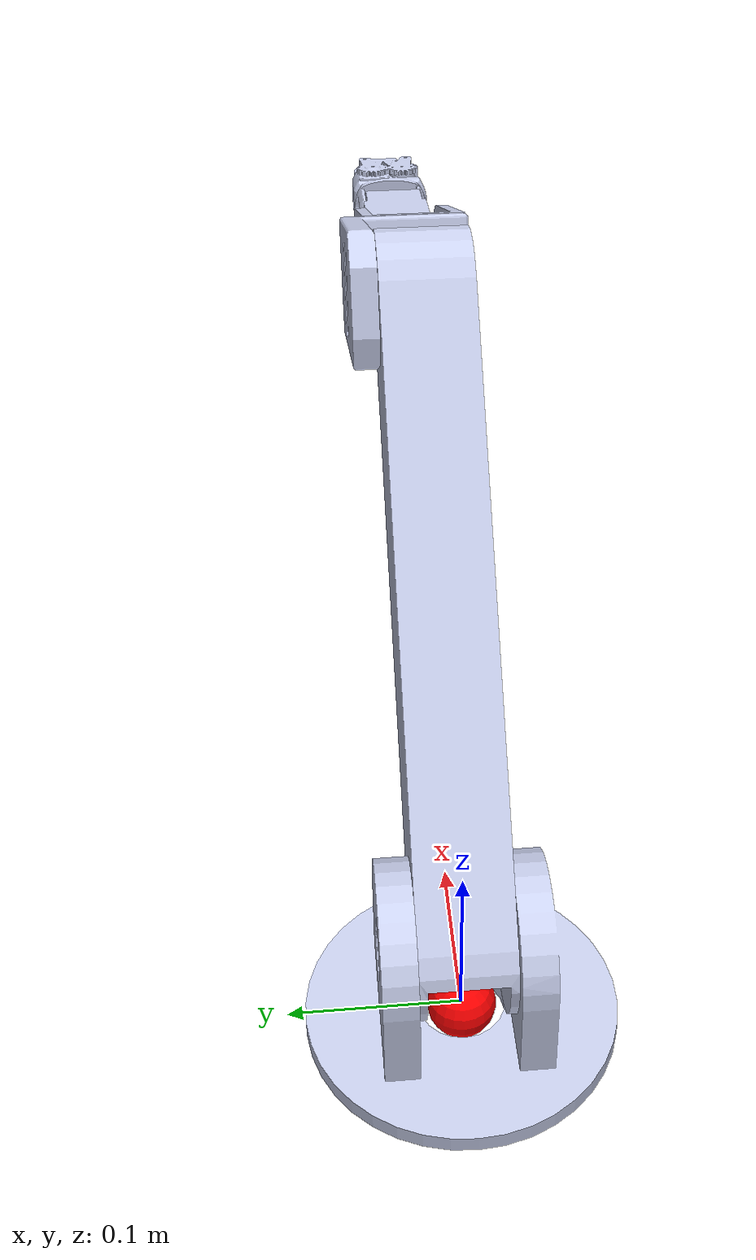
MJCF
<mujoco model="arm2.SLDASM">
  <compiler angle="radian"/>
  <default>
    <geom contype="1" conaffinity="1"/>
  </default>

  <asset>
    <mesh name="base_link" content_type="model/stl" file="base_link.stl"/>
    <mesh name="arm_link1" content_type="model/stl" file="arm_link1.stl"/>
    <mesh name="arm_link2" content_type="model/stl" file="arm_link2.stl"/>
    <mesh name="wrist1" content_type="model/stl" file="wrist1.stl"/>
    <mesh name="hand_link" content_type="model/stl" file="hand_link.stl"/>
    <mesh name="finger_link" content_type="model/stl" file="finger_link.stl"/>
  </asset>

  <worldbody>
    <body name="base_link">
      <inertial pos="2.139e-05 0.0017648 0.02168" quat="0.482209 0.518141 -0.516972 0.481398" mass="0.53613" diaginertia="0.00172612 0.0015219 0.00135018"/>
      <joint name="joint5" pos="0 0 0" axis="0 0 1" range="-4.26 4.26"/>
      <geom type="mesh" rgba="0.79216 0.81961 0.93333 1" mesh="base_link"/>
      <body name="arm_link1" pos="0 -0.0475 0.05" quat="0.641207 -0.641209 -0.298081 -0.298082">
        <inertial pos="0.1773 -0.00039417 0.048666" quat="-0.000275695 0.702082 -0.00261087 0.712092" mass="0.5946" diaginertia="0.01091 0.0107261 0.000688112"/>
        <joint name="joint0" pos="0 0 0" axis="0 0 1" range="-4.26 4.26"/>
        <geom type="mesh" rgba="0.79216 0.81961 0.93333 1" mesh="arm_link1"/>
        <body name="arm_link2" pos="0.37 0 0.075" quat="0.811752 0 0 0.584002">
          <inertial pos="0.093606 -0.00013859 -0.0074875" quat="0.0123143 0.769904 0.0124989 0.637918" mass="0.34589" diaginertia="0.00176958 0.00172556 0.000332425"/>
          <joint name="joint1" pos="0 0 0" axis="0 0 1" range="-2.36 2.36"/>
          <geom type="mesh" rgba="0.79216 0.81961 0.93333 1" mesh="arm_link2"/>
          <body name="wrist1" pos="0.185 0 -0.035" quat="0.707105 0 0.707108 0">
            <inertial pos="0 -0.00038502 0.043333" quat="0.707099 0.00324196 -0.00324196 0.707099" mass="0.25858" diaginertia="0.00109797 0.0010491 0.000316674"/>
            <joint name="joint2" pos="0 0 0" axis="0 0 1" range="-3.14 3.14"/>
            <geom type="mesh" rgba="0.79216 0.81961 0.93333 1" mesh="wrist1"/>
            <body name="hand_link" pos="-0.0255 0 0.125" quat="0.701523 0.0886832 -0.701524 -0.0886832">
              <inertial pos="0.047132 0 -0.024979" quat="0.499829 0.500171 0.500171 0.499829" mass="0.34435" diaginertia="0.00063583 0.00062808 0.00013834"/>
              <joint name="joint3" pos="0 0 0" axis="0 0 1" range="-2.36 2.36"/>
              <geom type="mesh" rgba="0.79216 0.81961 0.93333 1" mesh="hand_link"/>
              <body name="finger_link" pos="0.1068 0 -0.047" quat="-3.67321e-06 1 0 0">
                <inertial pos="0.077446 0.00022018 -0.023819" quat="0.48197 0.518848 0.517181 0.480651" mass="0.17519" diaginertia="5.89662e-05 4.87735e-05 3.49233e-05"/>
                <joint name="joint4" pos="0 0 0" axis="0 0 1" range="-2.36 2.36"/>
                <geom type="mesh" rgba="0.79216 0.81961 0.93333 1" mesh="finger_link"/>
              </body>
            </body>
          </body>
        </body>
      </body>
    </body>
    <body name="target">
      <inertial pos="2.139e-05 0.0017648 0.02168" mass="1" diaginertia="1 1 1"/>
      <joint name="target_joint" type="free"/>
      <geom type="sphere" size="0.02" rgba="1 0 0 1"/>
    </body>
  </worldbody>

</mujoco>
